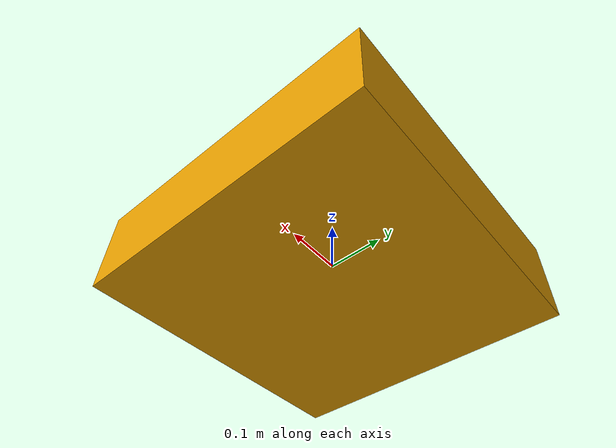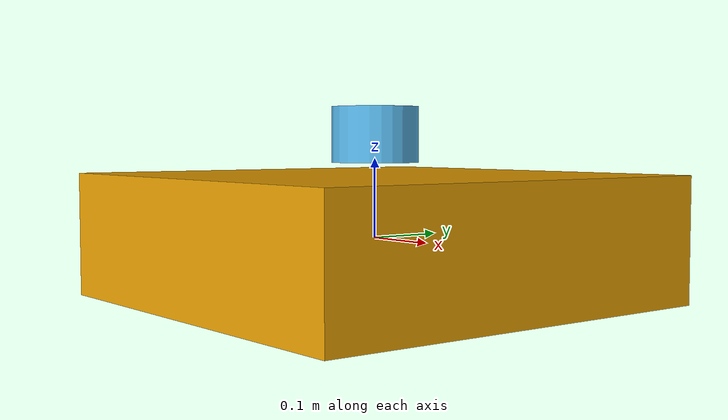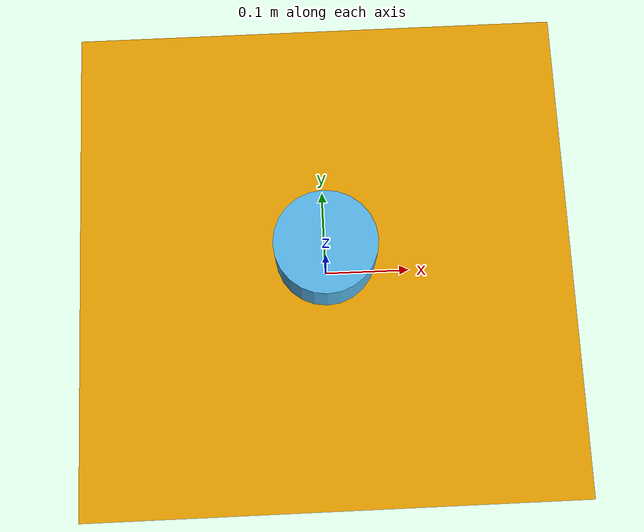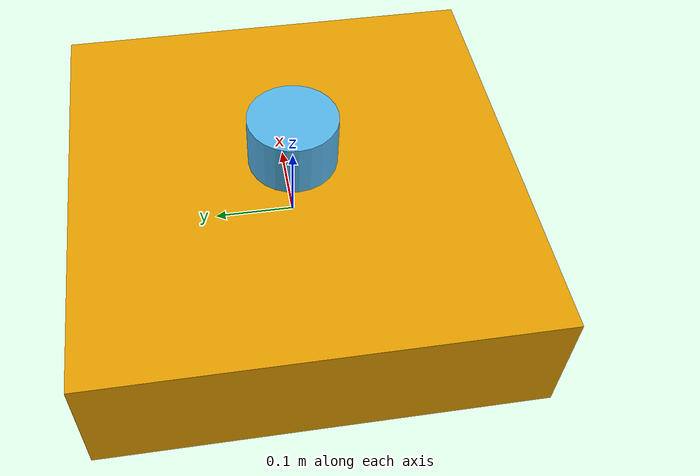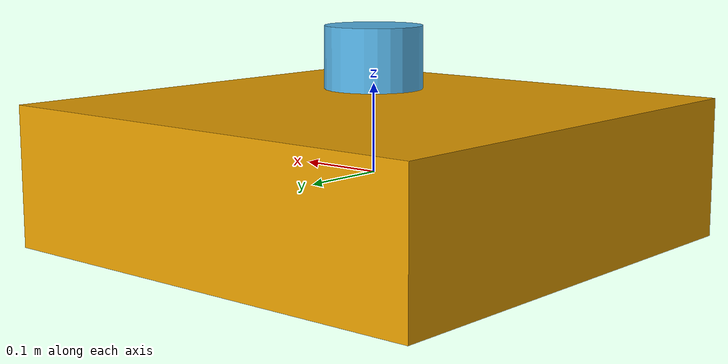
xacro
<?xml version="1.0"?>
<robot xmlns:xacro="http://www.ros.org/wiki/xacro" name="navigate_x_drone">
  <link name="base_link">
    <inertial>
      <mass value="1.5"/>
      <inertia ixx="0.03" ixy="0" ixz="0" iyy="0.03" iyz="0" izz="0.05"/>
    </inertial>
    <visual><geometry><box size="0.55 0.55 0.16"/></geometry></visual>
    <collision><geometry><box size="0.55 0.55 0.16"/></geometry></collision>
  </link>
  <link name="lidar_link">
    <visual><geometry><cylinder radius="0.055" length="0.07"/></geometry></visual>
  </link>
  <joint name="lidar_joint" type="fixed">
    <parent link="base_link"/><child link="lidar_link"/>
    <origin xyz="0 0 0.13"/>
  </joint>
  <link name="camera_link">
    <visual><geometry><box size="0.09 0.09 0.06"/></geometry></visual>
  </link>
  <joint name="camera_joint" type="fixed">
    <parent link="base_link"/><child link="camera_link"/>
    <origin xyz="0.22 0 -0.02"/>
  </joint>
</robot>
